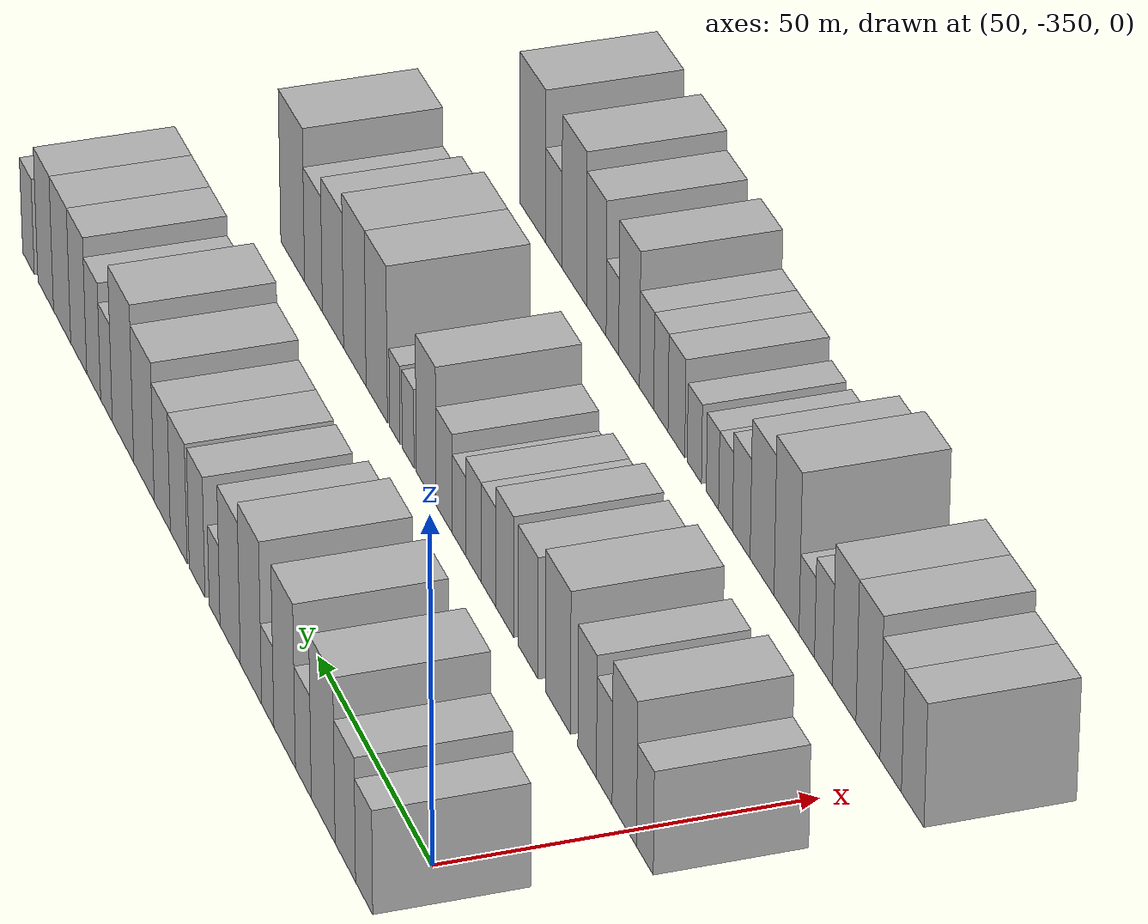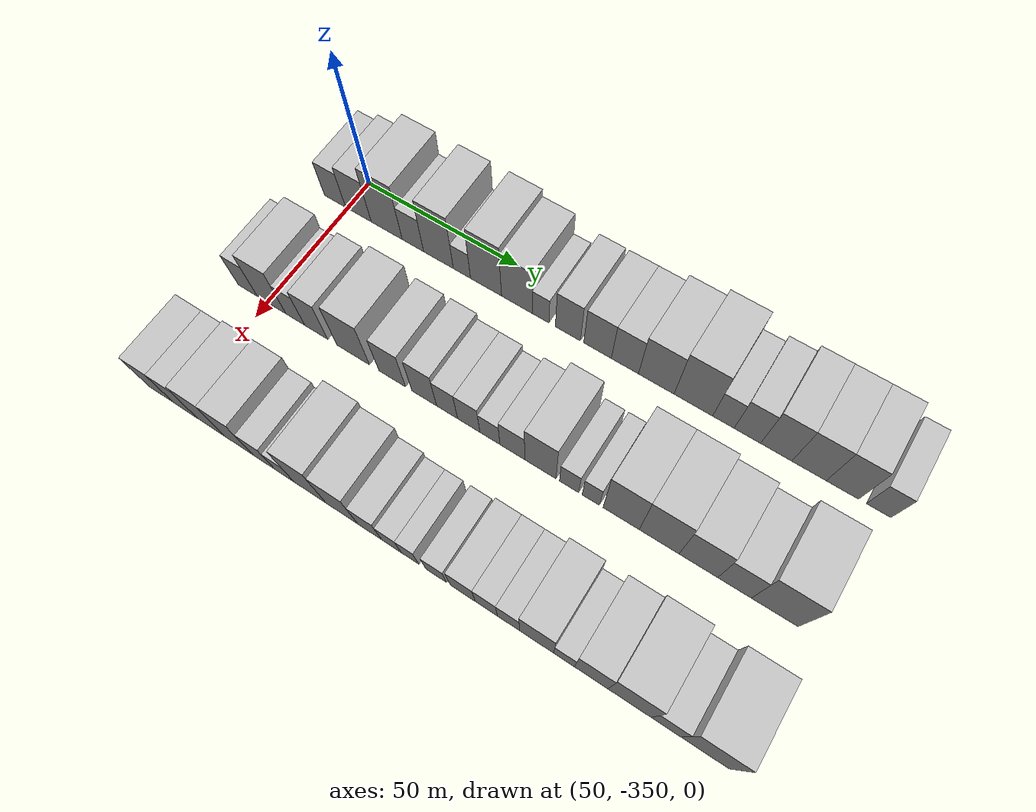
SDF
<sdf version="1.6">
 <world name="default">
  <model name="building_1">
   <static>1</static>
   <pose>50.0000 -354.3258 0 0.000000 0.000000 0.000000</pose>
   <link name="link">
    <pose>0 0 7.50 0 0 0</pose>
    <collision name="collision"><geometry><box><size>20.0000 7.3484 15.0000</size></box></geometry></collision>
    <visual name="visual">
     <cast_shadows>0</cast_shadows>
     <geometry><box><size>20.0000 7.3484 15.0000</size></box></geometry>
     <material>
      <script>
       <uri>model://HANNAS_wall/materials/scripts</uri>
       <uri>model://HANNAS_wall/materials/textures</uri>
       <name>vrc/HANNAS_wall</name>
      </script>
     </material>
    </visual>
   </link>
  </model>
  <model name="building_2">
   <static>1</static>
   <pose>50.0000 -346.2138 0 0.000000 0.000000 0.000000</pose>
   <link name="link">
    <pose>0 0 9.00 0 0 0</pose>
    <collision name="collision"><geometry><box><size>20.0000 8.8757 18.0000</size></box></geometry></collision>
    <visual name="visual">
     <cast_shadows>0</cast_shadows>
     <geometry><box><size>20.0000 8.8757 18.0000</size></box></geometry>
     <material>
      <script>
       <uri>model://HANNAS_wall/materials/scripts</uri>
       <uri>model://HANNAS_wall/materials/textures</uri>
       <name>vrc/HANNAS_wall</name>
      </script>
     </material>
    </visual>
   </link>
  </model>
  <model name="building_3">
   <static>1</static>
   <pose>50.0000 -336.5271 0 0.000000 0.000000 0.000000</pose>
   <link name="link">
    <pose>0 0 12.00 0 0 0</pose>
    <collision name="collision"><geometry><box><size>20.0000 10.4978 24.0000</size></box></geometry></collision>
    <visual name="visual">
     <cast_shadows>0</cast_shadows>
     <geometry><box><size>20.0000 10.4978 24.0000</size></box></geometry>
     <material>
      <script>
       <uri>model://HANNAS_wall/materials/scripts</uri>
       <uri>model://HANNAS_wall/materials/textures</uri>
       <name>vrc/HANNAS_wall</name>
      </script>
     </material>
    </visual>
   </link>
  </model>
  <model name="building_4">
   <static>1</static>
   <pose>50.0000 -327.7138 0 0.000000 0.000000 0.000000</pose>
   <link name="link">
    <pose>0 0 7.50 0 0 0</pose>
    <collision name="collision"><geometry><box><size>20.0000 7.1287 15.0000</size></box></geometry></collision>
    <visual name="visual">
     <cast_shadows>0</cast_shadows>
     <geometry><box><size>20.0000 7.1287 15.0000</size></box></geometry>
     <material>
      <script>
       <uri>model://HANNAS_wall/materials/scripts</uri>
       <uri>model://HANNAS_wall/materials/textures</uri>
       <name>vrc/HANNAS_wall</name>
      </script>
     </material>
    </visual>
   </link>
  </model>
  <model name="building_5">
   <static>1</static>
   <pose>50.0000 -319.2572 0 0.000000 0.000000 0.000000</pose>
   <link name="link">
    <pose>0 0 12.00 0 0 0</pose>
    <collision name="collision"><geometry><box><size>20.0000 9.7846 24.0000</size></box></geometry></collision>
    <visual name="visual">
     <cast_shadows>0</cast_shadows>
     <geometry><box><size>20.0000 9.7846 24.0000</size></box></geometry>
     <material>
      <script>
       <uri>model://HANNAS_wall/materials/scripts</uri>
       <uri>model://HANNAS_wall/materials/textures</uri>
       <name>vrc/HANNAS_wall</name>
      </script>
     </material>
    </visual>
   </link>
  </model>
  <model name="building_6">
   <static>1</static>
   <pose>50.0000 -311.5698 0 0.000000 0.000000 0.000000</pose>
   <link name="link">
    <pose>0 0 6.00 0 0 0</pose>
    <collision name="collision"><geometry><box><size>20.0000 5.5903 12.0000</size></box></geometry></collision>
    <visual name="visual">
     <cast_shadows>0</cast_shadows>
     <geometry><box><size>20.0000 5.5903 12.0000</size></box></geometry>
     <material>
      <script>
       <uri>model://HANNAS_wall/materials/scripts</uri>
       <uri>model://HANNAS_wall/materials/textures</uri>
       <name>vrc/HANNAS_wall</name>
      </script>
     </material>
    </visual>
   </link>
  </model>
  <model name="building_7">
   <static>1</static>
   <pose>50.0000 -303.7993 0 0.000000 0.000000 0.000000</pose>
   <link name="link">
    <pose>0 0 12.00 0 0 0</pose>
    <collision name="collision"><geometry><box><size>20.0000 9.9505 24.0000</size></box></geometry></collision>
    <visual name="visual">
     <cast_shadows>0</cast_shadows>
     <geometry><box><size>20.0000 9.9505 24.0000</size></box></geometry>
     <material>
      <script>
       <uri>model://HANNAS_wall/materials/scripts</uri>
       <uri>model://HANNAS_wall/materials/textures</uri>
       <name>vrc/HANNAS_wall</name>
      </script>
     </material>
    </visual>
   </link>
  </model>
  <model name="building_8">
   <static>1</static>
   <pose>50.0000 -294.0024 0 0.000000 0.000000 0.000000</pose>
   <link name="link">
    <pose>0 0 10.50 0 0 0</pose>
    <collision name="collision"><geometry><box><size>20.0000 9.6435 21.0000</size></box></geometry></collision>
    <visual name="visual">
     <cast_shadows>0</cast_shadows>
     <geometry><box><size>20.0000 9.6435 21.0000</size></box></geometry>
     <material>
      <script>
       <uri>model://HANNAS_wall/materials/scripts</uri>
       <uri>model://HANNAS_wall/materials/textures</uri>
       <name>vrc/HANNAS_wall</name>
      </script>
     </material>
    </visual>
   </link>
  </model>
  <model name="building_9">
   <static>1</static>
   <pose>50.0000 -286.5787 0 0.000000 0.000000 0.000000</pose>
   <link name="link">
    <pose>0 0 6.00 0 0 0</pose>
    <collision name="collision"><geometry><box><size>20.0000 5.2039 12.0000</size></box></geometry></collision>
    <visual name="visual">
     <cast_shadows>0</cast_shadows>
     <geometry><box><size>20.0000 5.2039 12.0000</size></box></geometry>
     <material>
      <script>
       <uri>model://HANNAS_wall/materials/scripts</uri>
       <uri>model://HANNAS_wall/materials/textures</uri>
       <name>vrc/HANNAS_wall</name>
      </script>
     </material>
    </visual>
   </link>
  </model>
  <model name="building_10">
   <static>1</static>
   <pose>50.0000 -278.1410 0 0.000000 0.000000 0.000000</pose>
   <link name="link">
    <pose>0 0 9.00 0 0 0</pose>
    <collision name="collision"><geometry><box><size>20.0000 7.6714 18.0000</size></box></geometry></collision>
    <visual name="visual">
     <cast_shadows>0</cast_shadows>
     <geometry><box><size>20.0000 7.6714 18.0000</size></box></geometry>
     <material>
      <script>
       <uri>model://HANNAS_wall/materials/scripts</uri>
       <uri>model://HANNAS_wall/materials/textures</uri>
       <name>vrc/HANNAS_wall</name>
      </script>
     </material>
    </visual>
   </link>
  </model>
  <model name="building_11">
   <static>1</static>
   <pose>50.0000 -269.1408 0 0.000000 0.000000 0.000000</pose>
   <link name="link">
    <pose>0 0 9.00 0 0 0</pose>
    <collision name="collision"><geometry><box><size>20.0000 8.3290 18.0000</size></box></geometry></collision>
    <visual name="visual">
     <cast_shadows>0</cast_shadows>
     <geometry><box><size>20.0000 8.3290 18.0000</size></box></geometry>
     <material>
      <script>
       <uri>model://HANNAS_wall/materials/scripts</uri>
       <uri>model://HANNAS_wall/materials/textures</uri>
       <name>vrc/HANNAS_wall</name>
      </script>
     </material>
    </visual>
   </link>
  </model>
  <model name="building_12">
   <static>1</static>
   <pose>50.0000 -260.9460 0 0.000000 0.000000 0.000000</pose>
   <link name="link">
    <pose>0 0 9.00 0 0 0</pose>
    <collision name="collision"><geometry><box><size>20.0000 8.0607 18.0000</size></box></geometry></collision>
    <visual name="visual">
     <cast_shadows>0</cast_shadows>
     <geometry><box><size>20.0000 8.0607 18.0000</size></box></geometry>
     <material>
      <script>
       <uri>model://HANNAS_wall/materials/scripts</uri>
       <uri>model://HANNAS_wall/materials/textures</uri>
       <name>vrc/HANNAS_wall</name>
      </script>
     </material>
    </visual>
   </link>
  </model>
  <model name="building_13">
   <static>1</static>
   <pose>50.0000 -251.7134 0 0.000000 0.000000 0.000000</pose>
   <link name="link">
    <pose>0 0 10.50 0 0 0</pose>
    <collision name="collision"><geometry><box><size>20.0000 10.4045 21.0000</size></box></geometry></collision>
    <visual name="visual">
     <cast_shadows>0</cast_shadows>
     <geometry><box><size>20.0000 10.4045 21.0000</size></box></geometry>
     <material>
      <script>
       <uri>model://HANNAS_wall/materials/scripts</uri>
       <uri>model://HANNAS_wall/materials/textures</uri>
       <name>vrc/HANNAS_wall</name>
      </script>
     </material>
    </visual>
   </link>
  </model>
  <model name="building_14">
   <static>1</static>
   <pose>50.0000 -240.9820 0 0.000000 0.000000 0.000000</pose>
   <link name="link">
    <pose>0 0 12.00 0 0 0</pose>
    <collision name="collision"><geometry><box><size>20.0000 11.0583 24.0000</size></box></geometry></collision>
    <visual name="visual">
     <cast_shadows>0</cast_shadows>
     <geometry><box><size>20.0000 11.0583 24.0000</size></box></geometry>
     <material>
      <script>
       <uri>model://HANNAS_wall/materials/scripts</uri>
       <uri>model://HANNAS_wall/materials/textures</uri>
       <name>vrc/HANNAS_wall</name>
      </script>
     </material>
    </visual>
   </link>
  </model>
  <model name="building_15">
   <static>1</static>
   <pose>50.0000 -232.4243 0 0.000000 0.000000 0.000000</pose>
   <link name="link">
    <pose>0 0 7.50 0 0 0</pose>
    <collision name="collision"><geometry><box><size>20.0000 6.0572 15.0000</size></box></geometry></collision>
    <visual name="visual">
     <cast_shadows>0</cast_shadows>
     <geometry><box><size>20.0000 6.0572 15.0000</size></box></geometry>
     <material>
      <script>
       <uri>model://HANNAS_wall/materials/scripts</uri>
       <uri>model://HANNAS_wall/materials/textures</uri>
       <name>vrc/HANNAS_wall</name>
      </script>
     </material>
    </visual>
   </link>
  </model>
  <model name="building_16">
   <static>1</static>
   <pose>50.0000 -225.7133 0 0.000000 0.000000 0.000000</pose>
   <link name="link">
    <pose>0 0 9.00 0 0 0</pose>
    <collision name="collision"><geometry><box><size>20.0000 7.3649 18.0000</size></box></geometry></collision>
    <visual name="visual">
     <cast_shadows>0</cast_shadows>
     <geometry><box><size>20.0000 7.3649 18.0000</size></box></geometry>
     <material>
      <script>
       <uri>model://HANNAS_wall/materials/scripts</uri>
       <uri>model://HANNAS_wall/materials/textures</uri>
       <name>vrc/HANNAS_wall</name>
      </script>
     </material>
    </visual>
   </link>
  </model>
  <model name="building_17">
   <static>1</static>
   <pose>50.0000 -217.7505 0 0.000000 0.000000 0.000000</pose>
   <link name="link">
    <pose>0 0 10.50 0 0 0</pose>
    <collision name="collision"><geometry><box><size>20.0000 8.5607 21.0000</size></box></geometry></collision>
    <visual name="visual">
     <cast_shadows>0</cast_shadows>
     <geometry><box><size>20.0000 8.5607 21.0000</size></box></geometry>
     <material>
      <script>
       <uri>model://HANNAS_wall/materials/scripts</uri>
       <uri>model://HANNAS_wall/materials/textures</uri>
       <name>vrc/HANNAS_wall</name>
      </script>
     </material>
    </visual>
   </link>
  </model>
  <model name="building_18">
   <static>1</static>
   <pose>50.0000 -208.8012 0 0.000000 0.000000 0.000000</pose>
   <link name="link">
    <pose>0 0 10.50 0 0 0</pose>
    <collision name="collision"><geometry><box><size>20.0000 9.3379 21.0000</size></box></geometry></collision>
    <visual name="visual">
     <cast_shadows>0</cast_shadows>
     <geometry><box><size>20.0000 9.3379 21.0000</size></box></geometry>
     <material>
      <script>
       <uri>model://HANNAS_wall/materials/scripts</uri>
       <uri>model://HANNAS_wall/materials/textures</uri>
       <name>vrc/HANNAS_wall</name>
      </script>
     </material>
    </visual>
   </link>
  </model>
  <model name="building_19">
   <static>1</static>
   <pose>50.0000 -199.8368 0 0.000000 0.000000 0.000000</pose>
   <link name="link">
    <pose>0 0 10.50 0 0 0</pose>
    <collision name="collision"><geometry><box><size>20.0000 8.5909 21.0000</size></box></geometry></collision>
    <visual name="visual">
     <cast_shadows>0</cast_shadows>
     <geometry><box><size>20.0000 8.5909 21.0000</size></box></geometry>
     <material>
      <script>
       <uri>model://HANNAS_wall/materials/scripts</uri>
       <uri>model://HANNAS_wall/materials/textures</uri>
       <name>vrc/HANNAS_wall</name>
      </script>
     </material>
    </visual>
   </link>
  </model>
  <model name="building_20">
   <static>1</static>
   <pose>50.0000 -190.3306 0 0.000000 0.000000 0.000000</pose>
   <link name="link">
    <pose>0 0 7.50 0 0 0</pose>
    <collision name="collision"><geometry><box><size>20.0000 6.4213 15.0000</size></box></geometry></collision>
    <visual name="visual">
     <cast_shadows>0</cast_shadows>
     <geometry><box><size>20.0000 6.4213 15.0000</size></box></geometry>
     <material>
      <script>
       <uri>model://HANNAS_wall/materials/scripts</uri>
       <uri>model://HANNAS_wall/materials/textures</uri>
       <name>vrc/HANNAS_wall</name>
      </script>
     </material>
    </visual>
   </link>
  </model>
  <model name="building_84">
   <static>1</static>
   <pose>85.0000 -356.7188 0 0.000000 0.000000 0.000000</pose>
   <link name="link">
    <pose>0 0 7.50 0 0 0</pose>
    <collision name="collision"><geometry><box><size>20.0000 6.5623 15.0000</size></box></geometry></collision>
    <visual name="visual">
     <cast_shadows>0</cast_shadows>
     <geometry><box><size>20.0000 6.5623 15.0000</size></box></geometry>
     <material>
      <script>
       <uri>model://HANNAS_wall/materials/scripts</uri>
       <uri>model://HANNAS_wall/materials/textures</uri>
       <name>vrc/HANNAS_wall</name>
      </script>
     </material>
    </visual>
   </link>
  </model>
  <model name="building_85">
   <static>1</static>
   <pose>85.0000 -348.6110 0 0.000000 0.000000 0.000000</pose>
   <link name="link">
    <pose>0 0 10.50 0 0 0</pose>
    <collision name="collision"><geometry><box><size>20.0000 9.6533 21.0000</size></box></geometry></collision>
    <visual name="visual">
     <cast_shadows>0</cast_shadows>
     <geometry><box><size>20.0000 9.6533 21.0000</size></box></geometry>
     <material>
      <script>
       <uri>model://HANNAS_wall/materials/scripts</uri>
       <uri>model://HANNAS_wall/materials/textures</uri>
       <name>vrc/HANNAS_wall</name>
      </script>
     </material>
    </visual>
   </link>
  </model>
  <model name="building_86">
   <static>1</static>
   <pose>85.0000 -340.6303 0 0.000000 0.000000 0.000000</pose>
   <link name="link">
    <pose>0 0 7.50 0 0 0</pose>
    <collision name="collision"><geometry><box><size>20.0000 6.3082 15.0000</size></box></geometry></collision>
    <visual name="visual">
     <cast_shadows>0</cast_shadows>
     <geometry><box><size>20.0000 6.3082 15.0000</size></box></geometry>
     <material>
      <script>
       <uri>model://HANNAS_wall/materials/scripts</uri>
       <uri>model://HANNAS_wall/materials/textures</uri>
       <name>vrc/HANNAS_wall</name>
      </script>
     </material>
    </visual>
   </link>
  </model>
  <model name="building_87">
   <static>1</static>
   <pose>85.0000 -333.6993 0 0.000000 0.000000 0.000000</pose>
   <link name="link">
    <pose>0 0 9.00 0 0 0</pose>
    <collision name="collision"><geometry><box><size>20.0000 7.5539 18.0000</size></box></geometry></collision>
    <visual name="visual">
     <cast_shadows>0</cast_shadows>
     <geometry><box><size>20.0000 7.5539 18.0000</size></box></geometry>
     <material>
      <script>
       <uri>model://HANNAS_wall/materials/scripts</uri>
       <uri>model://HANNAS_wall/materials/textures</uri>
       <name>vrc/HANNAS_wall</name>
      </script>
     </material>
    </visual>
   </link>
  </model>
  <model name="building_88">
   <static>1</static>
   <pose>85.0000 -321.6888 0 0.000000 0.000000 0.000000</pose>
   <link name="link">
    <pose>0 0 10.50 0 0 0</pose>
    <collision name="collision"><geometry><box><size>20.0000 10.4671 21.0000</size></box></geometry></collision>
    <visual name="visual">
     <cast_shadows>0</cast_shadows>
     <geometry><box><size>20.0000 10.4671 21.0000</size></box></geometry>
     <material>
      <script>
       <uri>model://HANNAS_wall/materials/scripts</uri>
       <uri>model://HANNAS_wall/materials/textures</uri>
       <name>vrc/HANNAS_wall</name>
      </script>
     </material>
    </visual>
   </link>
  </model>
  <model name="building_89">
   <static>1</static>
   <pose>85.0000 -309.2676 0 0.000000 0.000000 0.000000</pose>
   <link name="link">
    <pose>0 0 9.00 0 0 0</pose>
    <collision name="collision"><geometry><box><size>20.0000 8.3754 18.0000</size></box></geometry></collision>
    <visual name="visual">
     <cast_shadows>0</cast_shadows>
     <geometry><box><size>20.0000 8.3754 18.0000</size></box></geometry>
     <material>
      <script>
       <uri>model://HANNAS_wall/materials/scripts</uri>
       <uri>model://HANNAS_wall/materials/textures</uri>
       <name>vrc/HANNAS_wall</name>
      </script>
     </material>
    </visual>
   </link>
  </model>
  <model name="building_90">
   <static>1</static>
   <pose>85.0000 -299.2535 0 0.000000 0.000000 0.000000</pose>
   <link name="link">
    <pose>0 0 9.00 0 0 0</pose>
    <collision name="collision"><geometry><box><size>20.0000 7.6528 18.0000</size></box></geometry></collision>
    <visual name="visual">
     <cast_shadows>0</cast_shadows>
     <geometry><box><size>20.0000 7.6528 18.0000</size></box></geometry>
     <material>
      <script>
       <uri>model://HANNAS_wall/materials/scripts</uri>
       <uri>model://HANNAS_wall/materials/textures</uri>
       <name>vrc/HANNAS_wall</name>
      </script>
     </material>
    </visual>
   </link>
  </model>
  <model name="building_91">
   <static>1</static>
   <pose>85.0000 -292.2383 0 0.000000 0.000000 0.000000</pose>
   <link name="link">
    <pose>0 0 7.50 0 0 0</pose>
    <collision name="collision"><geometry><box><size>20.0000 6.3775 15.0000</size></box></geometry></collision>
    <visual name="visual">
     <cast_shadows>0</cast_shadows>
     <geometry><box><size>20.0000 6.3775 15.0000</size></box></geometry>
     <material>
      <script>
       <uri>model://HANNAS_wall/materials/scripts</uri>
       <uri>model://HANNAS_wall/materials/textures</uri>
       <name>vrc/HANNAS_wall</name>
      </script>
     </material>
    </visual>
   </link>
  </model>
  <model name="building_92">
   <static>1</static>
   <pose>85.0000 -285.6836 0 0.000000 0.000000 0.000000</pose>
   <link name="link">
    <pose>0 0 7.50 0 0 0</pose>
    <collision name="collision"><geometry><box><size>20.0000 6.7319 15.0000</size></box></geometry></collision>
    <visual name="visual">
     <cast_shadows>0</cast_shadows>
     <geometry><box><size>20.0000 6.7319 15.0000</size></box></geometry>
     <material>
      <script>
       <uri>model://HANNAS_wall/materials/scripts</uri>
       <uri>model://HANNAS_wall/materials/textures</uri>
       <name>vrc/HANNAS_wall</name>
      </script>
     </material>
    </visual>
   </link>
  </model>
  <model name="building_93">
   <static>1</static>
   <pose>85.0000 -279.3406 0 0.000000 0.000000 0.000000</pose>
   <link name="link">
    <pose>0 0 6.00 0 0 0</pose>
    <collision name="collision"><geometry><box><size>20.0000 5.9542 12.0000</size></box></geometry></collision>
    <visual name="visual">
     <cast_shadows>0</cast_shadows>
     <geometry><box><size>20.0000 5.9542 12.0000</size></box></geometry>
     <material>
      <script>
       <uri>model://HANNAS_wall/materials/scripts</uri>
       <uri>model://HANNAS_wall/materials/textures</uri>
       <name>vrc/HANNAS_wall</name>
      </script>
     </material>
    </visual>
   </link>
  </model>
  <model name="building_94">
   <static>1</static>
   <pose>85.0000 -272.6984 0 0.000000 0.000000 0.000000</pose>
   <link name="link">
    <pose>0 0 7.50 0 0 0</pose>
    <collision name="collision"><geometry><box><size>20.0000 7.3302 15.0000</size></box></geometry></collision>
    <visual name="visual">
     <cast_shadows>0</cast_shadows>
     <geometry><box><size>20.0000 7.3302 15.0000</size></box></geometry>
     <material>
      <script>
       <uri>model://HANNAS_wall/materials/scripts</uri>
       <uri>model://HANNAS_wall/materials/textures</uri>
       <name>vrc/HANNAS_wall</name>
      </script>
     </material>
    </visual>
   </link>
  </model>
  <model name="building_95">
   <static>1</static>
   <pose>85.0000 -264.5172 0 0.000000 0.000000 0.000000</pose>
   <link name="link">
    <pose>0 0 10.50 0 0 0</pose>
    <collision name="collision"><geometry><box><size>20.0000 9.0321 21.0000</size></box></geometry></collision>
    <visual name="visual">
     <cast_shadows>0</cast_shadows>
     <geometry><box><size>20.0000 9.0321 21.0000</size></box></geometry>
     <material>
      <script>
       <uri>model://HANNAS_wall/materials/scripts</uri>
       <uri>model://HANNAS_wall/materials/textures</uri>
       <name>vrc/HANNAS_wall</name>
      </script>
     </material>
    </visual>
   </link>
  </model>
  <model name="building_96">
   <static>1</static>
   <pose>85.0000 -256.2616 0 0.000000 0.000000 0.000000</pose>
   <link name="link">
    <pose>0 0 6.00 0 0 0</pose>
    <collision name="collision"><geometry><box><size>20.0000 5.4791 12.0000</size></box></geometry></collision>
    <visual name="visual">
     <cast_shadows>0</cast_shadows>
     <geometry><box><size>20.0000 5.4791 12.0000</size></box></geometry>
     <material>
      <script>
       <uri>model://HANNAS_wall/materials/scripts</uri>
       <uri>model://HANNAS_wall/materials/textures</uri>
       <name>vrc/HANNAS_wall</name>
      </script>
     </material>
    </visual>
   </link>
  </model>
  <model name="building_97">
   <static>1</static>
   <pose>85.0000 -250.0909 0 0.000000 0.000000 0.000000</pose>
   <link name="link">
    <pose>0 0 6.00 0 0 0</pose>
    <collision name="collision"><geometry><box><size>20.0000 4.8623 12.0000</size></box></geometry></collision>
    <visual name="visual">
     <cast_shadows>0</cast_shadows>
     <geometry><box><size>20.0000 4.8623 12.0000</size></box></geometry>
     <material>
      <script>
       <uri>model://HANNAS_wall/materials/scripts</uri>
       <uri>model://HANNAS_wall/materials/textures</uri>
       <name>vrc/HANNAS_wall</name>
      </script>
     </material>
    </visual>
   </link>
  </model>
  <model name="building_98">
   <static>1</static>
   <pose>85.0000 -241.6155 0 0.000000 0.000000 0.000000</pose>
   <link name="link">
    <pose>0 0 12.00 0 0 0</pose>
    <collision name="collision"><geometry><box><size>20.0000 10.0884 24.0000</size></box></geometry></collision>
    <visual name="visual">
     <cast_shadows>0</cast_shadows>
     <geometry><box><size>20.0000 10.0884 24.0000</size></box></geometry>
     <material>
      <script>
       <uri>model://HANNAS_wall/materials/scripts</uri>
       <uri>model://HANNAS_wall/materials/textures</uri>
       <name>vrc/HANNAS_wall</name>
      </script>
     </material>
    </visual>
   </link>
  </model>
  <model name="building_99">
   <static>1</static>
   <pose>85.0000 -231.1836 0 0.000000 0.000000 0.000000</pose>
   <link name="link">
    <pose>0 0 12.00 0 0 0</pose>
    <collision name="collision"><geometry><box><size>20.0000 10.7754 24.0000</size></box></geometry></collision>
    <visual name="visual">
     <cast_shadows>0</cast_shadows>
     <geometry><box><size>20.0000 10.7754 24.0000</size></box></geometry>
     <material>
      <script>
       <uri>model://HANNAS_wall/materials/scripts</uri>
       <uri>model://HANNAS_wall/materials/textures</uri>
       <name>vrc/HANNAS_wall</name>
      </script>
     </material>
    </visual>
   </link>
  </model>
  <model name="building_100">
   <static>1</static>
   <pose>85.0000 -220.6271 0 0.000000 0.000000 0.000000</pose>
   <link name="link">
    <pose>0 0 10.50 0 0 0</pose>
    <collision name="collision"><geometry><box><size>20.0000 10.3378 21.0000</size></box></geometry></collision>
    <visual name="visual">
     <cast_shadows>0</cast_shadows>
     <geometry><box><size>20.0000 10.3378 21.0000</size></box></geometry>
     <material>
      <script>
       <uri>model://HANNAS_wall/materials/scripts</uri>
       <uri>model://HANNAS_wall/materials/textures</uri>
       <name>vrc/HANNAS_wall</name>
      </script>
     </material>
    </visual>
   </link>
  </model>
  <model name="building_101">
   <static>1</static>
   <pose>85.0000 -211.0805 0 0.000000 0.000000 0.000000</pose>
   <link name="link">
    <pose>0 0 9.00 0 0 0</pose>
    <collision name="collision"><geometry><box><size>20.0000 8.7554 18.0000</size></box></geometry></collision>
    <visual name="visual">
     <cast_shadows>0</cast_shadows>
     <geometry><box><size>20.0000 8.7554 18.0000</size></box></geometry>
     <material>
      <script>
       <uri>model://HANNAS_wall/materials/scripts</uri>
       <uri>model://HANNAS_wall/materials/textures</uri>
       <name>vrc/HANNAS_wall</name>
      </script>
     </material>
    </visual>
   </link>
  </model>
  <model name="building_102">
   <static>1</static>
   <pose>85.0000 -200.7238 0 0.000000 0.000000 0.000000</pose>
   <link name="link">
    <pose>0 0 12.00 0 0 0</pose>
    <collision name="collision"><geometry><box><size>20.0000 11.9579 24.0000</size></box></geometry></collision>
    <visual name="visual">
     <cast_shadows>0</cast_shadows>
     <geometry><box><size>20.0000 11.9579 24.0000</size></box></geometry>
     <material>
      <script>
       <uri>model://HANNAS_wall/materials/scripts</uri>
       <uri>model://HANNAS_wall/materials/textures</uri>
       <name>vrc/HANNAS_wall</name>
      </script>
     </material>
    </visual>
   </link>
  </model>
  <model name="building_162">
   <static>1</static>
   <pose>120.0000 -355.9006 0 0.000000 0.000000 0.000000</pose>
   <link name="link">
    <pose>0 0 9.00 0 0 0</pose>
    <collision name="collision"><geometry><box><size>20.0000 8.1987 18.0000</size></box></geometry></collision>
    <visual name="visual">
     <cast_shadows>0</cast_shadows>
     <geometry><box><size>20.0000 8.1987 18.0000</size></box></geometry>
     <material>
      <script>
       <uri>model://HANNAS_wall/materials/scripts</uri>
       <uri>model://HANNAS_wall/materials/textures</uri>
       <name>vrc/HANNAS_wall</name>
      </script>
     </material>
    </visual>
   </link>
  </model>
  <model name="building_163">
   <static>1</static>
   <pose>120.0000 -347.8719 0 0.000000 0.000000 0.000000</pose>
   <link name="link">
    <pose>0 0 9.00 0 0 0</pose>
    <collision name="collision"><geometry><box><size>20.0000 7.8588 18.0000</size></box></geometry></collision>
    <visual name="visual">
     <cast_shadows>0</cast_shadows>
     <geometry><box><size>20.0000 7.8588 18.0000</size></box></geometry>
     <material>
      <script>
       <uri>model://HANNAS_wall/materials/scripts</uri>
       <uri>model://HANNAS_wall/materials/textures</uri>
       <name>vrc/HANNAS_wall</name>
      </script>
     </material>
    </visual>
   </link>
  </model>
  <model name="building_164">
   <static>1</static>
   <pose>120.0000 -339.4683 0 0.000000 0.000000 0.000000</pose>
   <link name="link">
    <pose>0 0 10.50 0 0 0</pose>
    <collision name="collision"><geometry><box><size>20.0000 8.9485 21.0000</size></box></geometry></collision>
    <visual name="visual">
     <cast_shadows>0</cast_shadows>
     <geometry><box><size>20.0000 8.9485 21.0000</size></box></geometry>
     <material>
      <script>
       <uri>model://HANNAS_wall/materials/scripts</uri>
       <uri>model://HANNAS_wall/materials/textures</uri>
       <name>vrc/HANNAS_wall</name>
      </script>
     </material>
    </visual>
   </link>
  </model>
  <model name="building_165">
   <static>1</static>
   <pose>120.0000 -330.5314 0 0.000000 0.000000 0.000000</pose>
   <link name="link">
    <pose>0 0 10.50 0 0 0</pose>
    <collision name="collision"><geometry><box><size>20.0000 8.9253 21.0000</size></box></geometry></collision>
    <visual name="visual">
     <cast_shadows>0</cast_shadows>
     <geometry><box><size>20.0000 8.9253 21.0000</size></box></geometry>
     <material>
      <script>
       <uri>model://HANNAS_wall/materials/scripts</uri>
       <uri>model://HANNAS_wall/materials/textures</uri>
       <name>vrc/HANNAS_wall</name>
      </script>
     </material>
    </visual>
   </link>
  </model>
  <model name="building_166">
   <static>1</static>
   <pose>120.0000 -322.6572 0 0.000000 0.000000 0.000000</pose>
   <link name="link">
    <pose>0 0 7.50 0 0 0</pose>
    <collision name="collision"><geometry><box><size>20.0000 6.8231 15.0000</size></box></geometry></collision>
    <visual name="visual">
     <cast_shadows>0</cast_shadows>
     <geometry><box><size>20.0000 6.8231 15.0000</size></box></geometry>
     <material>
      <script>
       <uri>model://HANNAS_wall/materials/scripts</uri>
       <uri>model://HANNAS_wall/materials/textures</uri>
       <name>vrc/HANNAS_wall</name>
      </script>
     </material>
    </visual>
   </link>
  </model>
  <model name="building_167">
   <static>1</static>
   <pose>120.0000 -316.2510 0 0.000000 0.000000 0.000000</pose>
   <link name="link">
    <pose>0 0 6.00 0 0 0</pose>
    <collision name="collision"><geometry><box><size>20.0000 5.9893 12.0000</size></box></geometry></collision>
    <visual name="visual">
     <cast_shadows>0</cast_shadows>
     <geometry><box><size>20.0000 5.9893 12.0000</size></box></geometry>
     <material>
      <script>
       <uri>model://HANNAS_wall/materials/scripts</uri>
       <uri>model://HANNAS_wall/materials/textures</uri>
       <name>vrc/HANNAS_wall</name>
      </script>
     </material>
    </visual>
   </link>
  </model>
  <model name="building_168">
   <static>1</static>
   <pose>120.0000 -308.3471 0 0.000000 0.000000 0.000000</pose>
   <link name="link">
    <pose>0 0 12.00 0 0 0</pose>
    <collision name="collision"><geometry><box><size>20.0000 9.8184 24.0000</size></box></geometry></collision>
    <visual name="visual">
     <cast_shadows>0</cast_shadows>
     <geometry><box><size>20.0000 9.8184 24.0000</size></box></geometry>
     <material>
      <script>
       <uri>model://HANNAS_wall/materials/scripts</uri>
       <uri>model://HANNAS_wall/materials/textures</uri>
       <name>vrc/HANNAS_wall</name>
      </script>
     </material>
    </visual>
   </link>
  </model>
  <model name="building_169">
   <static>1</static>
   <pose>120.0000 -298.6761 0 0.000000 0.000000 0.000000</pose>
   <link name="link">
    <pose>0 0 10.50 0 0 0</pose>
    <collision name="collision"><geometry><box><size>20.0000 9.5235 21.0000</size></box></geometry></collision>
    <visual name="visual">
     <cast_shadows>0</cast_shadows>
     <geometry><box><size>20.0000 9.5235 21.0000</size></box></geometry>
     <material>
      <script>
       <uri>model://HANNAS_wall/materials/scripts</uri>
       <uri>model://HANNAS_wall/materials/textures</uri>
       <name>vrc/HANNAS_wall</name>
      </script>
     </material>
    </visual>
   </link>
  </model>
  <model name="building_170">
   <static>1</static>
   <pose>120.0000 -290.3743 0 0.000000 0.000000 0.000000</pose>
   <link name="link">
    <pose>0 0 7.50 0 0 0</pose>
    <collision name="collision"><geometry><box><size>20.0000 7.0802 15.0000</size></box></geometry></collision>
    <visual name="visual">
     <cast_shadows>0</cast_shadows>
     <geometry><box><size>20.0000 7.0802 15.0000</size></box></geometry>
     <material>
      <script>
       <uri>model://HANNAS_wall/materials/scripts</uri>
       <uri>model://HANNAS_wall/materials/textures</uri>
       <name>vrc/HANNAS_wall</name>
      </script>
     </material>
    </visual>
   </link>
  </model>
  <model name="building_171">
   <static>1</static>
   <pose>120.0000 -284.0002 0 0.000000 0.000000 0.000000</pose>
   <link name="link">
    <pose>0 0 6.00 0 0 0</pose>
    <collision name="collision"><geometry><box><size>20.0000 5.6680 12.0000</size></box></geometry></collision>
    <visual name="visual">
     <cast_shadows>0</cast_shadows>
     <geometry><box><size>20.0000 5.6680 12.0000</size></box></geometry>
     <material>
      <script>
       <uri>model://HANNAS_wall/materials/scripts</uri>
       <uri>model://HANNAS_wall/materials/textures</uri>
       <name>vrc/HANNAS_wall</name>
      </script>
     </material>
    </visual>
   </link>
  </model>
  <model name="building_172">
   <static>1</static>
   <pose>120.0000 -278.6342 0 0.000000 0.000000 0.000000</pose>
   <link name="link">
    <pose>0 0 6.00 0 0 0</pose>
    <collision name="collision"><geometry><box><size>20.0000 5.0640 12.0000</size></box></geometry></collision>
    <visual name="visual">
     <cast_shadows>0</cast_shadows>
     <geometry><box><size>20.0000 5.0640 12.0000</size></box></geometry>
     <material>
      <script>
       <uri>model://HANNAS_wall/materials/scripts</uri>
       <uri>model://HANNAS_wall/materials/textures</uri>
       <name>vrc/HANNAS_wall</name>
      </script>
     </material>
    </visual>
   </link>
  </model>
  <model name="building_173">
   <static>1</static>
   <pose>120.0000 -271.1302 0 0.000000 0.000000 0.000000</pose>
   <link name="link">
    <pose>0 0 6.00 0 0 0</pose>
    <collision name="collision"><geometry><box><size>20.0000 5.9440 12.0000</size></box></geometry></collision>
    <visual name="visual">
     <cast_shadows>0</cast_shadows>
     <geometry><box><size>20.0000 5.9440 12.0000</size></box></geometry>
     <material>
      <script>
       <uri>model://HANNAS_wall/materials/scripts</uri>
       <uri>model://HANNAS_wall/materials/textures</uri>
       <name>vrc/HANNAS_wall</name>
      </script>
     </material>
    </visual>
   </link>
  </model>
  <model name="building_174">
   <static>1</static>
   <pose>120.0000 -263.6227 0 0.000000 0.000000 0.000000</pose>
   <link name="link">
    <pose>0 0 7.50 0 0 0</pose>
    <collision name="collision"><geometry><box><size>20.0000 7.0711 15.0000</size></box></geometry></collision>
    <visual name="visual">
     <cast_shadows>0</cast_shadows>
     <geometry><box><size>20.0000 7.0711 15.0000</size></box></geometry>
     <material>
      <script>
       <uri>model://HANNAS_wall/materials/scripts</uri>
       <uri>model://HANNAS_wall/materials/textures</uri>
       <name>vrc/HANNAS_wall</name>
      </script>
     </material>
    </visual>
   </link>
  </model>
  <model name="building_175">
   <static>1</static>
   <pose>120.0000 -257.0419 0 0.000000 0.000000 0.000000</pose>
   <link name="link">
    <pose>0 0 7.50 0 0 0</pose>
    <collision name="collision"><geometry><box><size>20.0000 6.0904 15.0000</size></box></geometry></collision>
    <visual name="visual">
     <cast_shadows>0</cast_shadows>
     <geometry><box><size>20.0000 6.0904 15.0000</size></box></geometry>
     <material>
      <script>
       <uri>model://HANNAS_wall/materials/scripts</uri>
       <uri>model://HANNAS_wall/materials/textures</uri>
       <name>vrc/HANNAS_wall</name>
      </script>
     </material>
    </visual>
   </link>
  </model>
  <model name="building_176">
   <static>1</static>
   <pose>120.0000 -250.9645 0 0.000000 0.000000 0.000000</pose>
   <link name="link">
    <pose>0 0 7.50 0 0 0</pose>
    <collision name="collision"><geometry><box><size>20.0000 6.0643 15.0000</size></box></geometry></collision>
    <visual name="visual">
     <cast_shadows>0</cast_shadows>
     <geometry><box><size>20.0000 6.0643 15.0000</size></box></geometry>
     <material>
      <script>
       <uri>model://HANNAS_wall/materials/scripts</uri>
       <uri>model://HANNAS_wall/materials/textures</uri>
       <name>vrc/HANNAS_wall</name>
      </script>
     </material>
    </visual>
   </link>
  </model>
  <model name="building_177">
   <static>1</static>
   <pose>120.0000 -243.3993 0 0.000000 0.000000 0.000000</pose>
   <link name="link">
    <pose>0 0 10.50 0 0 0</pose>
    <collision name="collision"><geometry><box><size>20.0000 9.0662 21.0000</size></box></geometry></collision>
    <visual name="visual">
     <cast_shadows>0</cast_shadows>
     <geometry><box><size>20.0000 9.0662 21.0000</size></box></geometry>
     <material>
      <script>
       <uri>model://HANNAS_wall/materials/scripts</uri>
       <uri>model://HANNAS_wall/materials/textures</uri>
       <name>vrc/HANNAS_wall</name>
      </script>
     </material>
    </visual>
   </link>
  </model>
  <model name="building_178">
   <static>1</static>
   <pose>120.0000 -236.1031 0 0.000000 0.000000 0.000000</pose>
   <link name="link">
    <pose>0 0 6.00 0 0 0</pose>
    <collision name="collision"><geometry><box><size>20.0000 5.5262 12.0000</size></box></geometry></collision>
    <visual name="visual">
     <cast_shadows>0</cast_shadows>
     <geometry><box><size>20.0000 5.5262 12.0000</size></box></geometry>
     <material>
      <script>
       <uri>model://HANNAS_wall/materials/scripts</uri>
       <uri>model://HANNAS_wall/materials/textures</uri>
       <name>vrc/HANNAS_wall</name>
      </script>
     </material>
    </visual>
   </link>
  </model>
  <model name="building_179">
   <static>1</static>
   <pose>120.0000 -228.9779 0 0.000000 0.000000 0.000000</pose>
   <link name="link">
    <pose>0 0 10.50 0 0 0</pose>
    <collision name="collision"><geometry><box><size>20.0000 8.7242 21.0000</size></box></geometry></collision>
    <visual name="visual">
     <cast_shadows>0</cast_shadows>
     <geometry><box><size>20.0000 8.7242 21.0000</size></box></geometry>
     <material>
      <script>
       <uri>model://HANNAS_wall/materials/scripts</uri>
       <uri>model://HANNAS_wall/materials/textures</uri>
       <name>vrc/HANNAS_wall</name>
      </script>
     </material>
    </visual>
   </link>
  </model>
  <model name="building_180">
   <static>1</static>
   <pose>120.0000 -219.0878 0 0.000000 0.000000 0.000000</pose>
   <link name="link">
    <pose>0 0 12.00 0 0 0</pose>
    <collision name="collision"><geometry><box><size>20.0000 11.0558 24.0000</size></box></geometry></collision>
    <visual name="visual">
     <cast_shadows>0</cast_shadows>
     <geometry><box><size>20.0000 11.0558 24.0000</size></box></geometry>
     <material>
      <script>
       <uri>model://HANNAS_wall/materials/scripts</uri>
       <uri>model://HANNAS_wall/materials/textures</uri>
       <name>vrc/HANNAS_wall</name>
      </script>
     </material>
    </visual>
   </link>
  </model>
  <model name="building_181">
   <static>1</static>
   <pose>120.0000 -209.8164 0 0.000000 0.000000 0.000000</pose>
   <link name="link">
    <pose>0 0 7.50 0 0 0</pose>
    <collision name="collision"><geometry><box><size>20.0000 7.4870 15.0000</size></box></geometry></collision>
    <visual name="visual">
     <cast_shadows>0</cast_shadows>
     <geometry><box><size>20.0000 7.4870 15.0000</size></box></geometry>
     <material>
      <script>
       <uri>model://HANNAS_wall/materials/scripts</uri>
       <uri>model://HANNAS_wall/materials/textures</uri>
       <name>vrc/HANNAS_wall</name>
      </script>
     </material>
    </visual>
   </link>
  </model>
  <model name="building_182">
   <static>1</static>
   <pose>120.0000 -200.1365 0 0.000000 0.000000 0.000000</pose>
   <link name="link">
    <pose>0 0 12.00 0 0 0</pose>
    <collision name="collision"><geometry><box><size>20.0000 11.8727 24.0000</size></box></geometry></collision>
    <visual name="visual">
     <cast_shadows>0</cast_shadows>
     <geometry><box><size>20.0000 11.8727 24.0000</size></box></geometry>
     <material>
      <script>
       <uri>model://HANNAS_wall/materials/scripts</uri>
       <uri>model://HANNAS_wall/materials/textures</uri>
       <name>vrc/HANNAS_wall</name>
      </script>
     </material>
    </visual>
   </link>
  </model>
 </world>
</sdf>
